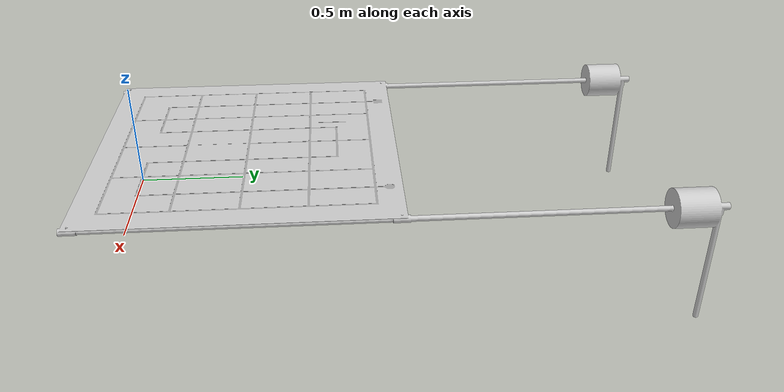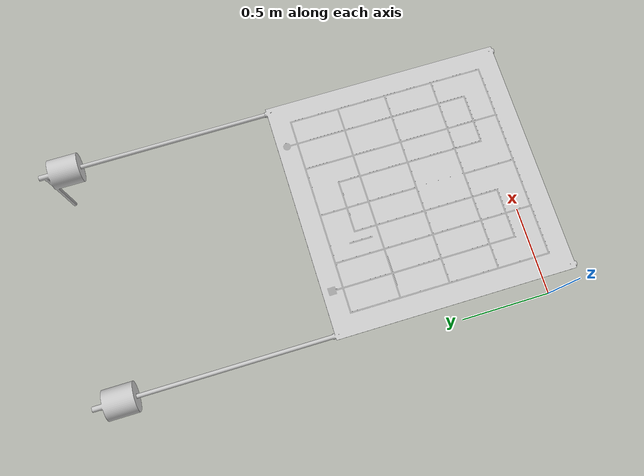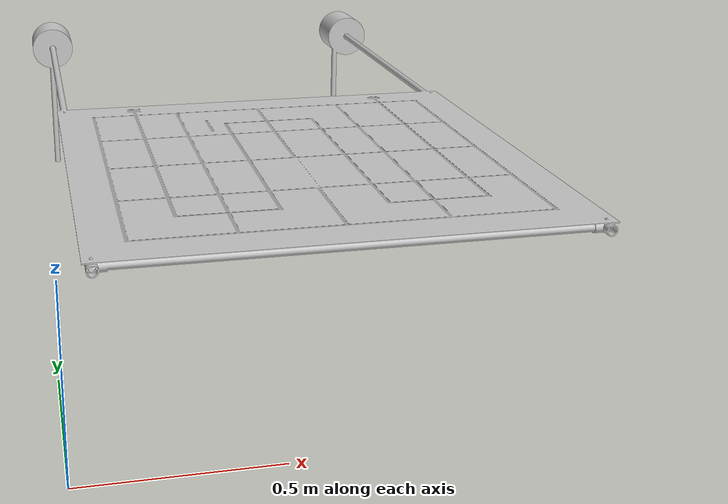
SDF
<?xml version="1.0"?>
<sdf version="1.5">
  <model name="pool">
    <static>true</static>
    <link name="dam_link">
      <collision name="dam_collision">
        <geometry>
          <mesh>
            <uri>model://MATE_props_2019/dam/meshes/dam.dae</uri>
          </mesh>
        </geometry>
      </collision>
      <visual name="dam_visual">
        <cast_shadows>true</cast_shadows>
        <geometry>
          <mesh>
            <uri>model://MATE_props_2019/dam/meshes/dam.dae</uri>
          </mesh>
        </geometry>
      </visual>
    </link>
  </model>
</sdf>
